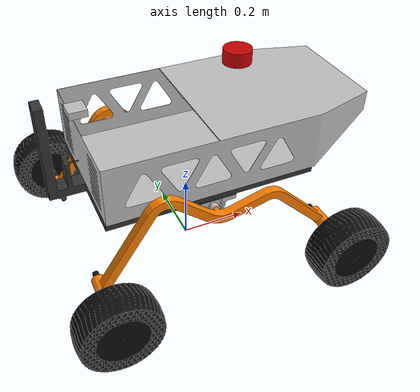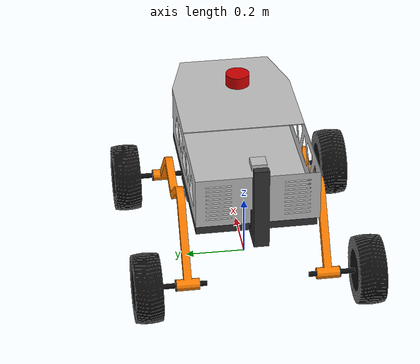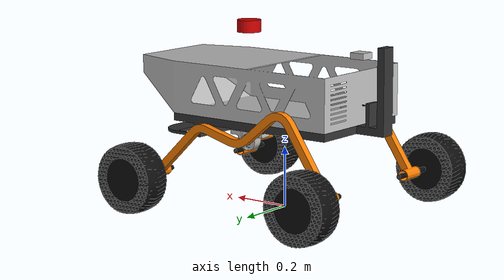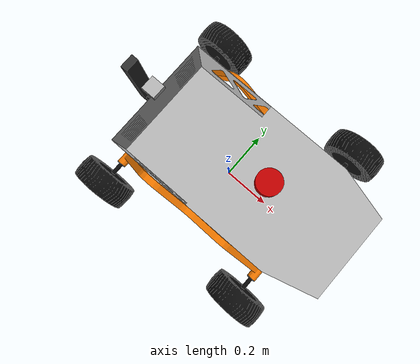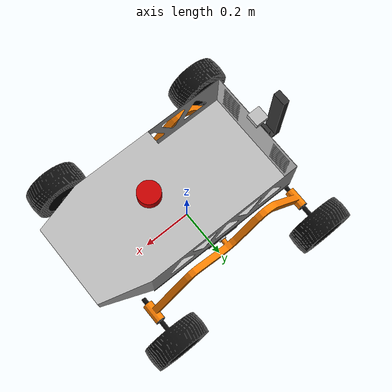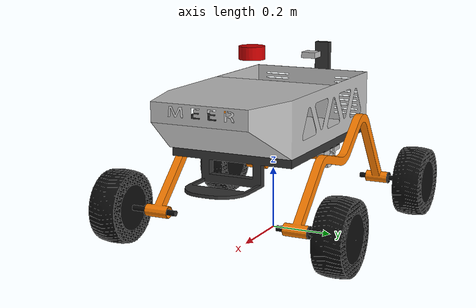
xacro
<?xml version="1.0"?>
<robot name="meer_rover" xmlns:xacro="http://www.ros.org/wiki/xacro">

  <!-- =====================================================================
       Include sub-xacro files
  ====================================================================== -->
  <xacro:include filename="$(find meer_description)/urdf/materials.xacro"/>
  <xacro:include filename="$(find meer_description)/urdf/inertia_macros.xacro"/>
  <xacro:include filename="$(find meer_description)/urdf/gazebo_plugins.xacro"/>
  <xacro:include filename="$(find meer_description)/urdf/ros2_control.xacro"/>

  <!-- =====================================================================
       BASE FOOTPRINT (Ground projection, Z=0)
  ====================================================================== -->
  <link name="base_footprint"/>

  <joint name="base_footprint_joint" type="fixed">
    <parent link="base_footprint"/>
    <child link="base_link"/>
    <origin xyz="0.0 0.0 0.31074" rpy="0 0 0"/>
  </joint>

  <link name="base_link">
    <visual>
      <origin xyz="0 0 0" rpy="0 0 -1.5707963"/>
      <geometry>
        <mesh filename="package://meer_description/meshes/base_link.STL"/>
      </geometry>
      <material name="dark_grey"/>
    </visual>
    <collision>
      <origin xyz="0.03 0.0 0.08" rpy="0 0 0"/>
      <geometry>
        <box size="0.87 0.40 0.25"/>
      </geometry>
    </collision>
    <inertial>
      <mass value="2.7788"/>
      <origin xyz="-0.00219 0.00508 -0.00451" rpy="0 0 0"/>
      <inertia
        ixx="0.050189" ixy="0.0" ixz="0.026071"
        iyy="0.196732" iyz="0.0" izz="0.227775"/>
    </inertial>
  </link>

  <link name="enclsr">
    <visual>
      <origin xyz="0 0 0" rpy="0 0 -1.5707963"/>
      <geometry>
        <mesh filename="package://meer_description/meshes/enclsr.STL"/>
      </geometry>
      <material name="silver"/>
    </visual>
    <collision>
      <origin xyz="0.09 0.0 0.086" rpy="0 0 0"/>
      <geometry>
        <box size="0.78 0.40 0.17"/>
      </geometry>
    </collision>
    <inertial>
      <mass value="0.5"/>
      <origin xyz="0.09 0.0 0.086" rpy="0 0 0"/>
      <xacro:solid_box_inertia m="0.5" x="0.78" y="0.40" z="0.17"/>
    </inertial>
  </link>

  <joint name="enclsr_joint" type="fixed">
    <parent link="base_link"/>
    <child link="enclsr"/>
    <origin xyz="0 0 0" rpy="0 0 0"/>
  </joint>

  <!-- Left Bearing (fixed mount on left side of chassis at Y = +0.2237 m) -->
  <link name="left_bearing">
    <visual>
      <origin xyz="0 0 0" rpy="0 0 -1.5707963"/>
      <geometry>
        <mesh filename="package://meer_description/meshes/left_bearing.STL"/>
      </geometry>
      <material name="silver"/>
    </visual>
    <collision>
      <origin xyz="0 0 0" rpy="1.5707963 0 0"/>
      <geometry>
        <cylinder radius="0.03" length="0.04"/>
      </geometry>
    </collision>
    <inertial>
      <mass value="0.1032"/>
      <origin xyz="-0.00004 -0.03813 0.00793" rpy="0 0 0"/>
      <inertia
        ixx="0.000039" ixy="0.0" ixz="0.0"
        iyy="0.000119" iyz="0.0" izz="0.000100"/>
    </inertial>
  </link>

  <joint name="LBRING" type="fixed">
    <parent link="base_link"/>
    <child link="left_bearing"/>
    <origin xyz="0.0015 0.22373 -0.0586" rpy="0 0 0"/>
  </joint>

  <!-- Left Rocker (rigidly locked to chassis bearing, leveled with CAD compensation) -->
  <link name="Left_rocker">
    <visual>
      <origin xyz="0 0 0" rpy="0 0 -1.5707963"/>
      <geometry>
        <mesh filename="package://meer_description/meshes/Left_rocker.STL"/>
      </geometry>
      <material name="orange"/>
    </visual>
    <collision>
      <origin xyz="0.0 -0.05 -0.03" rpy="0 0 0"/>
      <geometry>
        <box size="0.72 0.05 0.05"/>
      </geometry>
    </collision>
    <inertial>
      <mass value="4.9215"/>
      <origin xyz="-0.01847 0.00746 -0.00647" rpy="0 0 0"/>
      <inertia
        ixx="0.022827" ixy="0.000476" ixz="0.008313"
        iyy="0.231464" iyz="0.000167" izz="0.214717"/>
    </inertial>
  </link>

  <joint name="leftrocker" type="fixed">
    <parent link="left_bearing"/>
    <child link="Left_rocker"/>
    <origin xyz="0 0 0" rpy="0 0.03126 0"/>
  </joint>

  <!-- FLW — Front Left Wheel (driven wheel, rolling around Y axis) -->
  <link name="FLW">
    <visual>
      <origin xyz="0 0 0" rpy="0 0 -1.5707963"/>
      <geometry>
        <mesh filename="package://meer_description/meshes/FLW.STL"/>
      </geometry>
      <material name="black"/>
    </visual>
    <collision>
      <origin xyz="0 -0.0444 0" rpy="1.5707963 0 0"/>
      <geometry>
        <cylinder radius="0.1155" length="0.0889"/>
      </geometry>
    </collision>
    <inertial>
      <mass value="1.9116"/>
      <origin xyz="0.00004 -0.04682 0.0" rpy="0 0 0"/>
      <inertia
        ixx="0.005538" ixy="0.0" ixz="0.0"
        iyy="0.008143" iyz="0.0" izz="0.005536"/>
    </inertial>
  </link>

  <joint name="front_left_wheel" type="continuous">
    <parent link="Left_rocker"/>
    <child link="FLW"/>
    <origin xyz="0.34597 0.1908 -0.12589" rpy="0 0 0"/>
    <axis xyz="0 1 0"/>
    <limit effort="50" velocity="20"/>
    <dynamics damping="0.05" friction="0.02"/>
  </joint>

  <!-- BLW — Back Left Wheel (driven wheel, rolling around Y axis) -->
  <link name="BLW">
    <visual>
      <origin xyz="0 0 0" rpy="0 0 -1.5707963"/>
      <geometry>
        <mesh filename="package://meer_description/meshes/BLW.STL"/>
      </geometry>
      <material name="black"/>
    </visual>
    <collision>
      <origin xyz="0 -0.0444 0" rpy="1.5707963 0 0"/>
      <geometry>
        <cylinder radius="0.1155" length="0.0889"/>
      </geometry>
    </collision>
    <inertial>
      <mass value="1.9116"/>
      <origin xyz="0.00004 -0.04682 0.0" rpy="0 0 0"/>
      <inertia
        ixx="0.005538" ixy="0.0" ixz="0.0"
        iyy="0.008143" iyz="0.0" izz="0.005536"/>
    </inertial>
  </link>

  <joint name="back_left_wheel" type="continuous">
    <parent link="Left_rocker"/>
    <child link="BLW"/>
    <origin xyz="-0.33792 0.1908 -0.14727" rpy="0 0 0"/>
    <axis xyz="0 1 0"/>
    <limit effort="50" velocity="20"/>
    <dynamics damping="0.05" friction="0.02"/>
  </joint>

  <!-- Right Bearing (fixed mount on right side of chassis at Y = -0.2130 m) -->
  <link name="right_bearing">
    <visual>
      <origin xyz="0 0 0" rpy="0 0 -1.5707963"/>
      <geometry>
        <mesh filename="package://meer_description/meshes/right_bearing.STL"/>
      </geometry>
      <material name="silver"/>
    </visual>
    <collision>
      <origin xyz="0 0 0" rpy="1.5707963 0 0"/>
      <geometry>
        <cylinder radius="0.03" length="0.04"/>
      </geometry>
    </collision>
    <inertial>
      <mass value="0.1032"/>
      <origin xyz="0.00004 0.03760 0.00793" rpy="0 0 0"/>
      <inertia
        ixx="0.000039" ixy="0.0" ixz="0.0"
        iyy="0.000119" iyz="0.0" izz="0.000100"/>
    </inertial>
  </link>

  <joint name="RBRING" type="fixed">
    <parent link="base_link"/>
    <child link="right_bearing"/>
    <origin xyz="0.0015 -0.21304 -0.0586" rpy="0 0 0"/>
  </joint>

  <!-- Right Rocker (rigidly locked to chassis bearing, leveled with CAD compensation) -->
  <link name="right_rocker">
    <visual>
      <origin xyz="0 0 0" rpy="0 0 -1.5707963"/>
      <geometry>
        <mesh filename="package://meer_description/meshes/right_rocker.STL"/>
      </geometry>
      <material name="orange"/>
    </visual>
    <collision>
      <origin xyz="0.0 0.05 -0.03" rpy="0 0 0"/>
      <geometry>
        <box size="0.72 0.05 0.05"/>
      </geometry>
    </collision>
    <inertial>
      <mass value="4.9215"/>
      <origin xyz="-0.01799 -0.00746 -0.00770" rpy="0 0 0"/>
      <inertia
        ixx="0.022584" ixy="-0.000464" ixz="-0.004731"
        iyy="0.231464" iyz="-0.000199" izz="0.214960"/>
    </inertial>
  </link>

  <joint name="rightrcker" type="fixed">
    <parent link="right_bearing"/>
    <child link="right_rocker"/>
    <origin xyz="0 0 0" rpy="0 0.09904 0"/>
  </joint>

  <!-- FRW — Front Right Wheel (driven wheel, rolling around Y axis) -->
  <link name="FRW">
    <visual>
      <origin xyz="0 0 0" rpy="0 0 -1.5707963"/>
      <geometry>
        <mesh filename="package://meer_description/meshes/FRW.STL"/>
      </geometry>
      <material name="black"/>
    </visual>
    <collision>
      <origin xyz="0 0.0444 0" rpy="1.5707963 0 0"/>
      <geometry>
        <cylinder radius="0.1155" length="0.0889"/>
      </geometry>
    </collision>
    <inertial>
      <mass value="1.9116"/>
      <origin xyz="-0.00004 0.04682 0.0" rpy="0 0 0"/>
      <inertia
        ixx="0.005538" ixy="0.0" ixz="0.0"
        iyy="0.008143" iyz="0.0" izz="0.005536"/>
    </inertial>
  </link>

  <joint name="front_right_wheel" type="continuous">
    <parent link="right_rocker"/>
    <child link="FRW"/>
    <origin xyz="0.3537 -0.1908 -0.10217" rpy="0 0 0"/>
    <axis xyz="0 1 0"/>
    <limit effort="50" velocity="20"/>
    <dynamics damping="0.05" friction="0.02"/>
  </joint>

  <!-- BRW — Back Right Wheel (driven wheel, rolling around Y axis) -->
  <link name="BRW">
    <visual>
      <origin xyz="0 0 0" rpy="0 0 -1.5707963"/>
      <geometry>
        <mesh filename="package://meer_description/meshes/BRW.STL"/>
      </geometry>
      <material name="black"/>
    </visual>
    <collision>
      <origin xyz="0 0.0444 0" rpy="1.5707963 0 0"/>
      <geometry>
        <cylinder radius="0.1155" length="0.0889"/>
      </geometry>
    </collision>
    <inertial>
      <mass value="1.9116"/>
      <origin xyz="-0.00004 0.04682 0.0" rpy="0 0 0"/>
      <inertia
        ixx="0.005538" ixy="0.0" ixz="0.0"
        iyy="0.008143" iyz="0.0" izz="0.005536"/>
    </inertial>
  </link>

  <joint name="back_right_wheel" type="continuous">
    <parent link="right_rocker"/>
    <child link="BRW"/>
    <origin xyz="-0.32717 -0.1908 -0.16982" rpy="0 0 0"/>
    <axis xyz="0 1 0"/>
    <limit effort="50" velocity="20"/>
    <dynamics damping="0.05" friction="0.02"/>
  </joint>

  <!-- ── 2D LiDAR ──────────────────────────────────────────────────────── -->
  <link name="lidar_link">
    <visual>
      <geometry><cylinder radius="0.04" length="0.04"/></geometry>
      <origin xyz="0 0 0" rpy="0 0 0"/>
      <material name="red"/>
    </visual>
    <collision>
      <geometry><cylinder radius="0.04" length="0.04"/></geometry>
      <origin xyz="0 0 0" rpy="0 0 0"/>
    </collision>
    <inertial>
      <mass value="0.1"/>
      <origin xyz="0 0 0" rpy="0 0 0"/>
      <xacro:solid_cylinder_inertia m="0.1" r="0.04" h="0.04"/>
    </inertial>
  </link>

  <joint name="lidar_joint" type="fixed">
    <parent link="base_link"/>
    <child link="lidar_link"/>
    <origin xyz="0.15 0.0 0.28" rpy="0 0 0"/>
  </joint>

  <!-- ── IMU ───────────────────────────────────────────────────────────── -->
  <link name="imu_link">
    <inertial>
      <mass value="0.01"/>
      <origin xyz="0 0 0" rpy="0 0 0"/>
      <inertia ixx="1e-6" ixy="0" ixz="0"
               iyy="1e-6" iyz="0" izz="1e-6"/>
    </inertial>
  </link>

  <joint name="imu_joint" type="fixed">
    <parent link="base_link"/>
    <child link="imu_link"/>
    <origin xyz="0.0 0.0 0.0" rpy="0 0 0"/>
  </joint>

  <!-- ── GPS / NavSat ──────────────────────────────────────────────────── -->
  <link name="gps_link">
    <visual>
      <geometry><box size="0.05 0.05 0.02"/></geometry>
      <origin xyz="0 0 0" rpy="0 0 0"/>
      <material name="silver"/>
    </visual>
    <collision>
      <geometry><box size="0.05 0.05 0.02"/></geometry>
      <origin xyz="0 0 0" rpy="0 0 0"/>
    </collision>
    <inertial>
      <mass value="0.05"/>
      <origin xyz="0 0 0" rpy="0 0 0"/>
      <inertia ixx="1e-6" ixy="0" ixz="0"
               iyy="1e-6" iyz="0" izz="1e-6"/>
    </inertial>
  </link>

  <joint name="gps_joint" type="fixed">
    <parent link="base_link"/>
    <child link="gps_link"/>
    <origin xyz="-0.30 0.0 0.22" rpy="0 0 0"/>
  </joint>

  <!-- ── RGB Camera ─────────────────────────────────────────────────────── -->
  <link name="camera_link">
    <visual>
      <geometry><box size="0.04 0.08 0.04"/></geometry>
      <origin xyz="0 0 0" rpy="0 0 0"/>
      <material name="dark_grey"/>
    </visual>
    <collision>
      <geometry><box size="0.04 0.08 0.04"/></geometry>
      <origin xyz="0 0 0" rpy="0 0 0"/>
    </collision>
    <inertial>
      <mass value="0.1"/>
      <origin xyz="0 0 0" rpy="0 0 0"/>
      <inertia ixx="1e-6" ixy="0" ixz="0"
               iyy="1e-6" iyz="0" izz="1e-6"/>
    </inertial>
  </link>

  <joint name="camera_joint" type="fixed">
    <parent link="base_link"/>
    <child link="camera_link"/>
    <origin xyz="0.44 0.0 0.12" rpy="0 0 0"/>
  </joint>

  <!-- Camera optical frame (ROS standard: z-forward, x-right, y-down) -->
  <link name="camera_optical_link"/>

  <joint name="camera_optical_joint" type="fixed">
    <parent link="camera_link"/>
    <child link="camera_optical_link"/>
    <origin xyz="0 0 0" rpy="-1.5707963 0 -1.5707963"/>
  </joint>

</robot>

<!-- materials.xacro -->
<!--
  Materials / Visual Color Definitions for the MEER Rover.
-->
<robot xmlns:xacro="http://www.ros.org/wiki/xacro">

  <material name="black">
    <color rgba="0.05 0.05 0.05 1.0"/>
  </material>

  <material name="dark_grey">
    <color rgba="0.2 0.2 0.2 1.0"/>
  </material>

  <material name="silver">
    <color rgba="0.75 0.75 0.75 1.0"/>
  </material>

  <material name="orange">
    <color rgba="1.0 0.5 0.0 1.0"/>
  </material>

  <material name="white">
    <color rgba="1.0 1.0 1.0 1.0"/>
  </material>

  <material name="red">
    <color rgba="0.8 0.0 0.0 1.0"/>
  </material>

  <material name="green">
    <color rgba="0.0 0.8 0.0 1.0"/>
  </material>

  <material name="blue">
    <color rgba="0.0 0.0 0.8 1.0"/>
  </material>

</robot>

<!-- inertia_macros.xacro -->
<!--
  Inertia Helper Macros
  Provides reusable solid-body inertia macros to keep the URDF DRY.
-->
<robot xmlns:xacro="http://www.ros.org/wiki/xacro">

  <!-- ─── Solid cylinder about the symmetry axis (Y in URDF convention) ── -->
  <xacro:macro name="solid_cylinder_inertia" params="m r h">
    <inertia
      ixx="${(m/12.0)*(3*r*r + h*h)}"
      ixy="0.0" ixz="0.0"
      iyy="${(m/2.0)*r*r}"
      iyz="0.0"
      izz="${(m/12.0)*(3*r*r + h*h)}"/>
  </xacro:macro>

  <!-- ─── Solid box ─────────────────────────────────────────────────────── -->
  <xacro:macro name="solid_box_inertia" params="m x y z">
    <inertia
      ixx="${(m/12.0)*(y*y + z*z)}"
      ixy="0.0" ixz="0.0"
      iyy="${(m/12.0)*(x*x + z*z)}"
      iyz="0.0"
      izz="${(m/12.0)*(x*x + y*y)}"/>
  </xacro:macro>

  <!-- ─── Solid sphere ──────────────────────────────────────────────────── -->
  <xacro:macro name="solid_sphere_inertia" params="m r">
    <inertia
      ixx="${(2.0/5.0)*m*r*r}"
      ixy="0.0" ixz="0.0"
      iyy="${(2.0/5.0)*m*r*r}"
      iyz="0.0"
      izz="${(2.0/5.0)*m*r*r}"/>
  </xacro:macro>

</robot>
